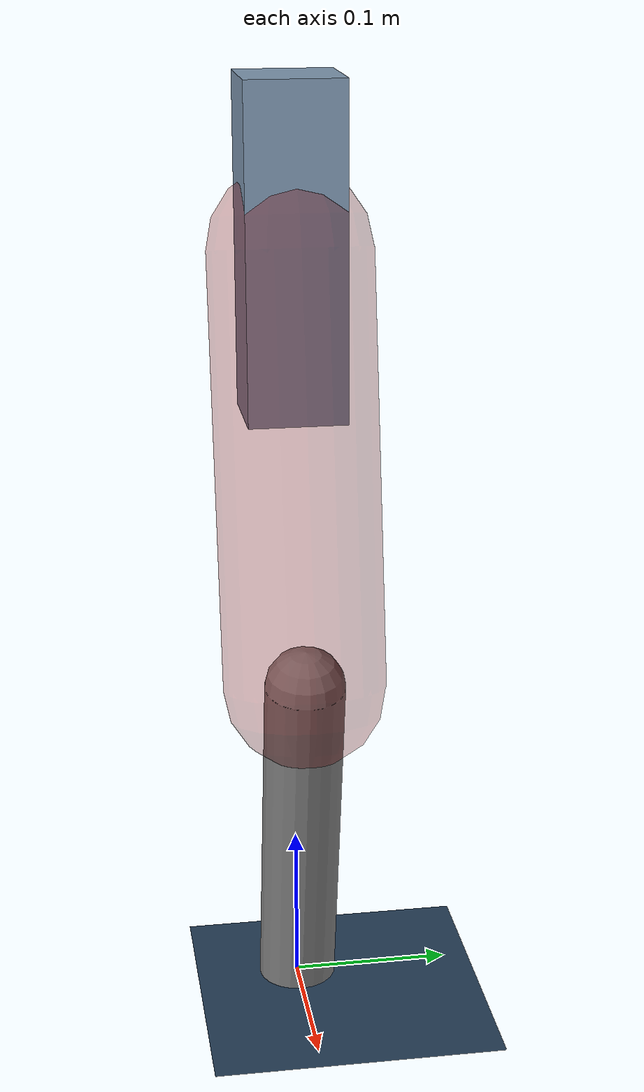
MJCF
<mujoco model="Hopper2D">
	<compiler inertiafromgeom="true" angle="radian" />
	<option timestep="0.001" integrator="implicit" cone="elliptic" solver="Newton" tolerance="1e-10" />

	<default>
		<geom contype="1" conaffinity="1" condim="3" friction="2 0.005 0.0001" solref="0.005 1" />
		<joint limited="true" damping="0.1" />
	</default>

	<asset>
		<texture name="skybox" type="skybox" builtin="gradient" rgb1=".4 .6 .8" rgb2="0 0 0" width="800" height="800" />
		<texture name="grid" type="2d" builtin="checker" rgb1=".1 .2 .3" rgb2=".2 .3 .4" width="300" height="300" mark="edge" markrgb=".2 .3 .4" />
		<material name="ground" texture="grid" texrepeat="1 1" texuniform="true" reflectance="0.1" />
		<material name="leg" rgba="0.5 0.6 0.7 1" />
	</asset>

	<worldbody>

		<geom name="floor" type="plane" size="5 5 0.25" material="ground" />

		<light directional="false" diffuse="0.8 0.8 0.8" specular="0.3 0.3 0.3" pos="0 0 2" dir="0 0 -1" />
		<light mode="targetbodycom" target="base" directional="false" diffuse="0.8 0.8 0.8" specular="0.3 0.3 0.3" pos="0 0 2" dir="0 0 -1" />

		<camera name="fixed" pos="0 -2 1" xyaxes="1 0 0 0 0 1" />
		<camera name="tracking" mode="trackcom" pos="0 -3 1" />

		<body name="root" pos="0 0 0.48445106770470864">
			<joint name="slide_x" type="slide" axis="1 0 0" range="-100 100" />
			<joint name="slide_z" type="slide" axis="0 0 1" range="0 10" />

			<body name="base" pos="0 0 0">
				<geom name="torso" type="box" size="0.03 0.03 0.1" mass="2.643" material="leg" />

				<body name="link1" pos="0 0 0" euler="0 1.3819300933562844 0">
					<joint type="hinge" axis="0 -1 0" pos="0 0 0" name="hinge1" limited="true" range="-3.14 3.14" stiffness="0" damping="0.1" />
					<geom name="thigh" type="capsule" fromto="0 0 0 0.26293875289795693 0 0" size="0.05" rgba="0.5 0 0 0.3" mass="0.8901346328244837" />

					<body name="link2" pos="0.26293875289795693 0 0" euler="0 0.40374680490022147 0">
						<joint type="hinge" axis="0 -1 0" pos="0 0 0" name="hinge2" limited="true" range="-3.14 3.14" stiffness="0" damping="0.1" />
						<geom name="shank" type="capsule" fromto="0 0 0 0.23151231480675172 0 0" size="0.025" mass="0.42720985184540133" />

					</body>
				</body>
			</body>
		</body>
	</worldbody>

	<actuator>
		<motor name="torque1" joint="hinge1" ctrlrange="-108.65631661670393 108.65631661670393" ctrllimited="true" gear="1" />
		<motor name="torque2" joint="hinge2" ctrlrange="-83.69676245165056 83.69676245165056" ctrllimited="true" gear="1" />
	</actuator>
</mujoco>
